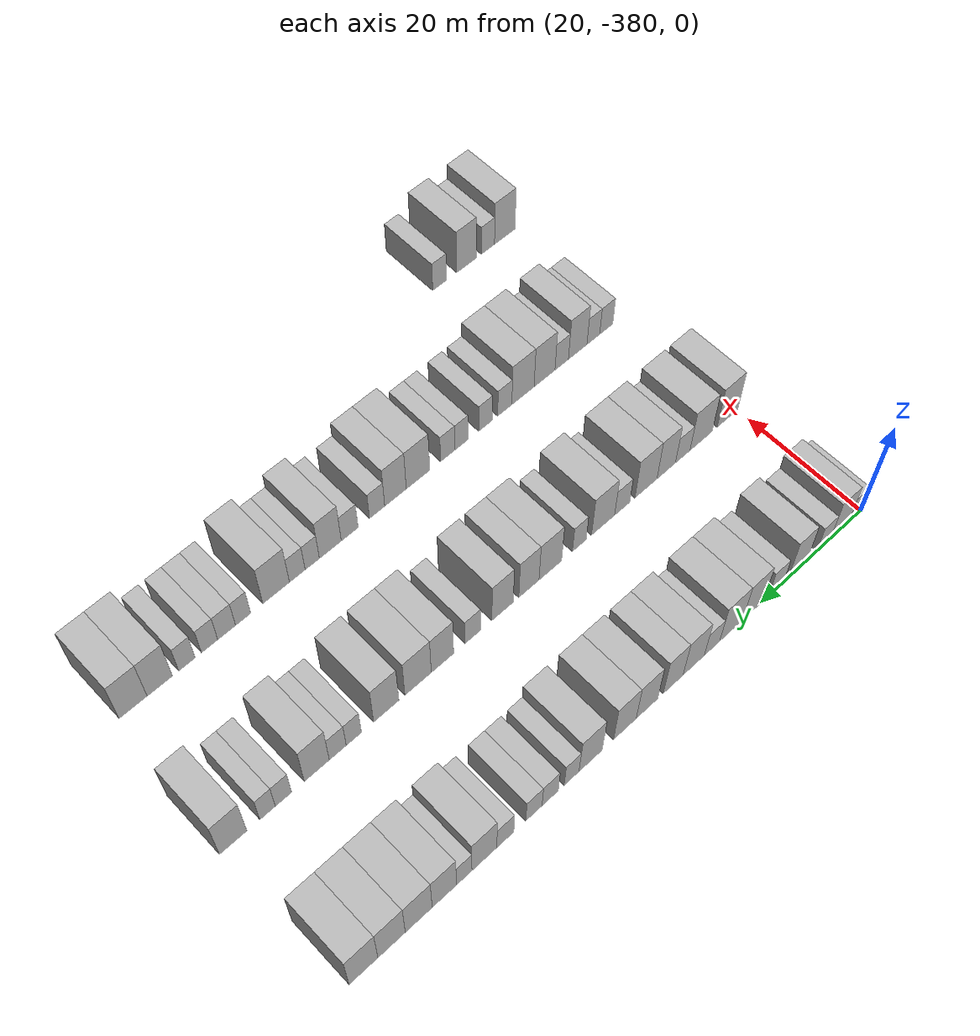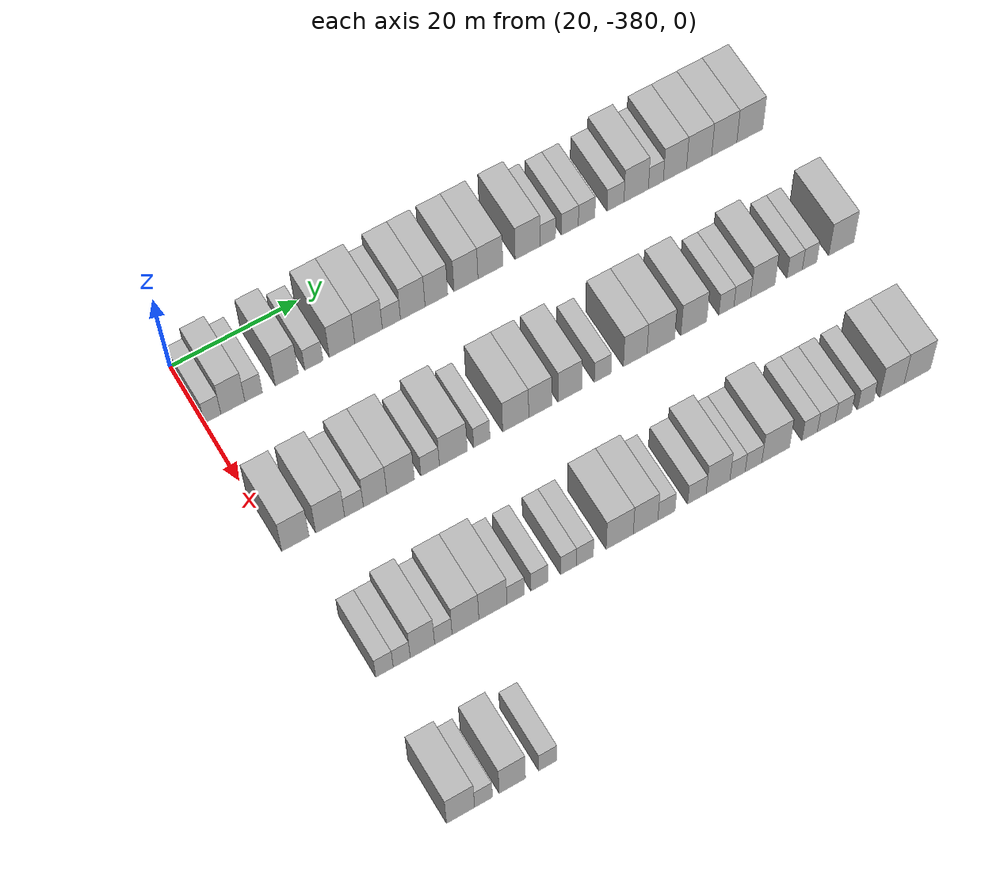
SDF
<sdf version="1.6">
 <world name="default">
  <model name="building_1">
   <static>1</static>
   <pose>25.0000 -378.7042 0 0.000000 0.000000 0.000000</pose>
   <link name="link">
    <pose>0 0 3.00 0 0 0</pose>
    <collision name="collision"><geometry><box><size>10.0000 2.5916 6.0000</size></box></geometry></collision>
    <visual name="visual">
     <cast_shadows>0</cast_shadows>
     <geometry><box><size>10.0000 2.5916 6.0000</size></box></geometry>
     <material>
      <script>
       <uri>model://HANNAS_wall/materials/scripts</uri>
       <uri>model://HANNAS_wall/materials/textures</uri>
       <name>vrc/HANNAS_wall</name>
      </script>
     </material>
    </visual>
   </link>
  </model>
  <model name="building_2">
   <static>1</static>
   <pose>25.0000 -375.5459 0 0.000000 0.000000 0.000000</pose>
   <link name="link">
    <pose>0 0 4.50 0 0 0</pose>
    <collision name="collision"><geometry><box><size>10.0000 3.7251 9.0000</size></box></geometry></collision>
    <visual name="visual">
     <cast_shadows>0</cast_shadows>
     <geometry><box><size>10.0000 3.7251 9.0000</size></box></geometry>
     <material>
      <script>
       <uri>model://HANNAS_wall/materials/scripts</uri>
       <uri>model://HANNAS_wall/materials/textures</uri>
       <name>vrc/HANNAS_wall</name>
      </script>
     </material>
    </visual>
   </link>
  </model>
  <model name="building_3">
   <static>1</static>
   <pose>25.0000 -372.3275 0 0.000000 0.000000 0.000000</pose>
   <link name="link">
    <pose>0 0 3.00 0 0 0</pose>
    <collision name="collision"><geometry><box><size>10.0000 2.7116 6.0000</size></box></geometry></collision>
    <visual name="visual">
     <cast_shadows>0</cast_shadows>
     <geometry><box><size>10.0000 2.7116 6.0000</size></box></geometry>
     <material>
      <script>
       <uri>model://HANNAS_wall/materials/scripts</uri>
       <uri>model://HANNAS_wall/materials/textures</uri>
       <name>vrc/HANNAS_wall</name>
      </script>
     </material>
    </visual>
   </link>
  </model>
  <model name="building_4">
   <static>1</static>
   <pose>25.0000 -367.1593 0 0.000000 0.000000 0.000000</pose>
   <link name="link">
    <pose>0 0 4.50 0 0 0</pose>
    <collision name="collision"><geometry><box><size>10.0000 3.6249 9.0000</size></box></geometry></collision>
    <visual name="visual">
     <cast_shadows>0</cast_shadows>
     <geometry><box><size>10.0000 3.6249 9.0000</size></box></geometry>
     <material>
      <script>
       <uri>model://HANNAS_wall/materials/scripts</uri>
       <uri>model://HANNAS_wall/materials/textures</uri>
       <name>vrc/HANNAS_wall</name>
      </script>
     </material>
    </visual>
   </link>
  </model>
  <model name="building_5">
   <static>1</static>
   <pose>25.0000 -362.9181 0 0.000000 0.000000 0.000000</pose>
   <link name="link">
    <pose>0 0 3.00 0 0 0</pose>
    <collision name="collision"><geometry><box><size>10.0000 2.8575 6.0000</size></box></geometry></collision>
    <visual name="visual">
     <cast_shadows>0</cast_shadows>
     <geometry><box><size>10.0000 2.8575 6.0000</size></box></geometry>
     <material>
      <script>
       <uri>model://HANNAS_wall/materials/scripts</uri>
       <uri>model://HANNAS_wall/materials/textures</uri>
       <name>vrc/HANNAS_wall</name>
      </script>
     </material>
    </visual>
   </link>
  </model>
  <model name="building_6">
   <static>1</static>
   <pose>25.0000 -358.4756 0 0.000000 0.000000 0.000000</pose>
   <link name="link">
    <pose>0 0 4.50 0 0 0</pose>
    <collision name="collision"><geometry><box><size>10.0000 4.0275 9.0000</size></box></geometry></collision>
    <visual name="visual">
     <cast_shadows>0</cast_shadows>
     <geometry><box><size>10.0000 4.0275 9.0000</size></box></geometry>
     <material>
      <script>
       <uri>model://HANNAS_wall/materials/scripts</uri>
       <uri>model://HANNAS_wall/materials/textures</uri>
       <name>vrc/HANNAS_wall</name>
      </script>
     </material>
    </visual>
   </link>
  </model>
  <model name="building_7">
   <static>1</static>
   <pose>25.0000 -354.2735 0 0.000000 0.000000 0.000000</pose>
   <link name="link">
    <pose>0 0 4.50 0 0 0</pose>
    <collision name="collision"><geometry><box><size>10.0000 4.3768 9.0000</size></box></geometry></collision>
    <visual name="visual">
     <cast_shadows>0</cast_shadows>
     <geometry><box><size>10.0000 4.3768 9.0000</size></box></geometry>
     <material>
      <script>
       <uri>model://HANNAS_wall/materials/scripts</uri>
       <uri>model://HANNAS_wall/materials/textures</uri>
       <name>vrc/HANNAS_wall</name>
      </script>
     </material>
    </visual>
   </link>
  </model>
  <model name="building_8">
   <static>1</static>
   <pose>25.0000 -350.6441 0 0.000000 0.000000 0.000000</pose>
   <link name="link">
    <pose>0 0 3.00 0 0 0</pose>
    <collision name="collision"><geometry><box><size>10.0000 2.8820 6.0000</size></box></geometry></collision>
    <visual name="visual">
     <cast_shadows>0</cast_shadows>
     <geometry><box><size>10.0000 2.8820 6.0000</size></box></geometry>
     <material>
      <script>
       <uri>model://HANNAS_wall/materials/scripts</uri>
       <uri>model://HANNAS_wall/materials/textures</uri>
       <name>vrc/HANNAS_wall</name>
      </script>
     </material>
    </visual>
   </link>
  </model>
  <model name="building_9">
   <static>1</static>
   <pose>25.0000 -347.2375 0 0.000000 0.000000 0.000000</pose>
   <link name="link">
    <pose>0 0 4.50 0 0 0</pose>
    <collision name="collision"><geometry><box><size>10.0000 3.9311 9.0000</size></box></geometry></collision>
    <visual name="visual">
     <cast_shadows>0</cast_shadows>
     <geometry><box><size>10.0000 3.9311 9.0000</size></box></geometry>
     <material>
      <script>
       <uri>model://HANNAS_wall/materials/scripts</uri>
       <uri>model://HANNAS_wall/materials/textures</uri>
       <name>vrc/HANNAS_wall</name>
      </script>
     </material>
    </visual>
   </link>
  </model>
  <model name="building_10">
   <static>1</static>
   <pose>25.0000 -343.4574 0 0.000000 0.000000 0.000000</pose>
   <link name="link">
    <pose>0 0 4.50 0 0 0</pose>
    <collision name="collision"><geometry><box><size>10.0000 3.6291 9.0000</size></box></geometry></collision>
    <visual name="visual">
     <cast_shadows>0</cast_shadows>
     <geometry><box><size>10.0000 3.6291 9.0000</size></box></geometry>
     <material>
      <script>
       <uri>model://HANNAS_wall/materials/scripts</uri>
       <uri>model://HANNAS_wall/materials/textures</uri>
       <name>vrc/HANNAS_wall</name>
      </script>
     </material>
    </visual>
   </link>
  </model>
  <model name="building_11">
   <static>1</static>
   <pose>25.0000 -338.7094 0 0.000000 0.000000 0.000000</pose>
   <link name="link">
    <pose>0 0 4.50 0 0 0</pose>
    <collision name="collision"><geometry><box><size>10.0000 3.8671 9.0000</size></box></geometry></collision>
    <visual name="visual">
     <cast_shadows>0</cast_shadows>
     <geometry><box><size>10.0000 3.8671 9.0000</size></box></geometry>
     <material>
      <script>
       <uri>model://HANNAS_wall/materials/scripts</uri>
       <uri>model://HANNAS_wall/materials/textures</uri>
       <name>vrc/HANNAS_wall</name>
      </script>
     </material>
    </visual>
   </link>
  </model>
  <model name="building_12">
   <static>1</static>
   <pose>25.0000 -334.7679 0 0.000000 0.000000 0.000000</pose>
   <link name="link">
    <pose>0 0 4.50 0 0 0</pose>
    <collision name="collision"><geometry><box><size>10.0000 4.0159 9.0000</size></box></geometry></collision>
    <visual name="visual">
     <cast_shadows>0</cast_shadows>
     <geometry><box><size>10.0000 4.0159 9.0000</size></box></geometry>
     <material>
      <script>
       <uri>model://HANNAS_wall/materials/scripts</uri>
       <uri>model://HANNAS_wall/materials/textures</uri>
       <name>vrc/HANNAS_wall</name>
      </script>
     </material>
    </visual>
   </link>
  </model>
  <model name="building_13">
   <static>1</static>
   <pose>25.0000 -328.7408 0 0.000000 0.000000 0.000000</pose>
   <link name="link">
    <pose>0 0 4.50 0 0 0</pose>
    <collision name="collision"><geometry><box><size>10.0000 4.0384 9.0000</size></box></geometry></collision>
    <visual name="visual">
     <cast_shadows>0</cast_shadows>
     <geometry><box><size>10.0000 4.0384 9.0000</size></box></geometry>
     <material>
      <script>
       <uri>model://HANNAS_wall/materials/scripts</uri>
       <uri>model://HANNAS_wall/materials/textures</uri>
       <name>vrc/HANNAS_wall</name>
      </script>
     </material>
    </visual>
   </link>
  </model>
  <model name="building_14">
   <static>1</static>
   <pose>25.0000 -325.4519 0 0.000000 0.000000 0.000000</pose>
   <link name="link">
    <pose>0 0 3.00 0 0 0</pose>
    <collision name="collision"><geometry><box><size>10.0000 2.5393 6.0000</size></box></geometry></collision>
    <visual name="visual">
     <cast_shadows>0</cast_shadows>
     <geometry><box><size>10.0000 2.5393 6.0000</size></box></geometry>
     <material>
      <script>
       <uri>model://HANNAS_wall/materials/scripts</uri>
       <uri>model://HANNAS_wall/materials/textures</uri>
       <name>vrc/HANNAS_wall</name>
      </script>
     </material>
    </visual>
   </link>
  </model>
  <model name="building_15">
   <static>1</static>
   <pose>25.0000 -321.8085 0 0.000000 0.000000 0.000000</pose>
   <link name="link">
    <pose>0 0 3.00 0 0 0</pose>
    <collision name="collision"><geometry><box><size>10.0000 2.7476 6.0000</size></box></geometry></collision>
    <visual name="visual">
     <cast_shadows>0</cast_shadows>
     <geometry><box><size>10.0000 2.7476 6.0000</size></box></geometry>
     <material>
      <script>
       <uri>model://HANNAS_wall/materials/scripts</uri>
       <uri>model://HANNAS_wall/materials/textures</uri>
       <name>vrc/HANNAS_wall</name>
      </script>
     </material>
    </visual>
   </link>
  </model>
  <model name="building_16">
   <static>1</static>
   <pose>25.0000 -319.0733 0 0.000000 0.000000 0.000000</pose>
   <link name="link">
    <pose>0 0 3.00 0 0 0</pose>
    <collision name="collision"><geometry><box><size>10.0000 2.7228 6.0000</size></box></geometry></collision>
    <visual name="visual">
     <cast_shadows>0</cast_shadows>
     <geometry><box><size>10.0000 2.7228 6.0000</size></box></geometry>
     <material>
      <script>
       <uri>model://HANNAS_wall/materials/scripts</uri>
       <uri>model://HANNAS_wall/materials/textures</uri>
       <name>vrc/HANNAS_wall</name>
      </script>
     </material>
    </visual>
   </link>
  </model>
  <model name="building_17">
   <static>1</static>
   <pose>25.0000 -314.3101 0 0.000000 0.000000 0.000000</pose>
   <link name="link">
    <pose>0 0 3.00 0 0 0</pose>
    <collision name="collision"><geometry><box><size>10.0000 2.8036 6.0000</size></box></geometry></collision>
    <visual name="visual">
     <cast_shadows>0</cast_shadows>
     <geometry><box><size>10.0000 2.8036 6.0000</size></box></geometry>
     <material>
      <script>
       <uri>model://HANNAS_wall/materials/scripts</uri>
       <uri>model://HANNAS_wall/materials/textures</uri>
       <name>vrc/HANNAS_wall</name>
      </script>
     </material>
    </visual>
   </link>
  </model>
  <model name="building_18">
   <static>1</static>
   <pose>25.0000 -310.8846 0 0.000000 0.000000 0.000000</pose>
   <link name="link">
    <pose>0 0 4.50 0 0 0</pose>
    <collision name="collision"><geometry><box><size>10.0000 4.0474 9.0000</size></box></geometry></collision>
    <visual name="visual">
     <cast_shadows>0</cast_shadows>
     <geometry><box><size>10.0000 4.0474 9.0000</size></box></geometry>
     <material>
      <script>
       <uri>model://HANNAS_wall/materials/scripts</uri>
       <uri>model://HANNAS_wall/materials/textures</uri>
       <name>vrc/HANNAS_wall</name>
      </script>
     </material>
    </visual>
   </link>
  </model>
  <model name="building_19">
   <static>1</static>
   <pose>25.0000 -307.6178 0 0.000000 0.000000 0.000000</pose>
   <link name="link">
    <pose>0 0 3.00 0 0 0</pose>
    <collision name="collision"><geometry><box><size>10.0000 2.4863 6.0000</size></box></geometry></collision>
    <visual name="visual">
     <cast_shadows>0</cast_shadows>
     <geometry><box><size>10.0000 2.4863 6.0000</size></box></geometry>
     <material>
      <script>
       <uri>model://HANNAS_wall/materials/scripts</uri>
       <uri>model://HANNAS_wall/materials/textures</uri>
       <name>vrc/HANNAS_wall</name>
      </script>
     </material>
    </visual>
   </link>
  </model>
  <model name="building_20">
   <static>1</static>
   <pose>25.0000 -304.4380 0 0.000000 0.000000 0.000000</pose>
   <link name="link">
    <pose>0 0 4.50 0 0 0</pose>
    <collision name="collision"><geometry><box><size>10.0000 3.8734 9.0000</size></box></geometry></collision>
    <visual name="visual">
     <cast_shadows>0</cast_shadows>
     <geometry><box><size>10.0000 3.8734 9.0000</size></box></geometry>
     <material>
      <script>
       <uri>model://HANNAS_wall/materials/scripts</uri>
       <uri>model://HANNAS_wall/materials/textures</uri>
       <name>vrc/HANNAS_wall</name>
      </script>
     </material>
    </visual>
   </link>
  </model>
  <model name="building_21">
   <static>1</static>
   <pose>25.0000 -300.3931 0 0.000000 0.000000 0.000000</pose>
   <link name="link">
    <pose>0 0 4.50 0 0 0</pose>
    <collision name="collision"><geometry><box><size>10.0000 4.2163 9.0000</size></box></geometry></collision>
    <visual name="visual">
     <cast_shadows>0</cast_shadows>
     <geometry><box><size>10.0000 4.2163 9.0000</size></box></geometry>
     <material>
      <script>
       <uri>model://HANNAS_wall/materials/scripts</uri>
       <uri>model://HANNAS_wall/materials/textures</uri>
       <name>vrc/HANNAS_wall</name>
      </script>
     </material>
    </visual>
   </link>
  </model>
  <model name="building_22">
   <static>1</static>
   <pose>25.0000 -296.1703 0 0.000000 0.000000 0.000000</pose>
   <link name="link">
    <pose>0 0 4.50 0 0 0</pose>
    <collision name="collision"><geometry><box><size>10.0000 4.2294 9.0000</size></box></geometry></collision>
    <visual name="visual">
     <cast_shadows>0</cast_shadows>
     <geometry><box><size>10.0000 4.2294 9.0000</size></box></geometry>
     <material>
      <script>
       <uri>model://HANNAS_wall/materials/scripts</uri>
       <uri>model://HANNAS_wall/materials/textures</uri>
       <name>vrc/HANNAS_wall</name>
      </script>
     </material>
    </visual>
   </link>
  </model>
  <model name="building_23">
   <static>1</static>
   <pose>25.0000 -291.8603 0 0.000000 0.000000 0.000000</pose>
   <link name="link">
    <pose>0 0 4.50 0 0 0</pose>
    <collision name="collision"><geometry><box><size>10.0000 4.3907 9.0000</size></box></geometry></collision>
    <visual name="visual">
     <cast_shadows>0</cast_shadows>
     <geometry><box><size>10.0000 4.3907 9.0000</size></box></geometry>
     <material>
      <script>
       <uri>model://HANNAS_wall/materials/scripts</uri>
       <uri>model://HANNAS_wall/materials/textures</uri>
       <name>vrc/HANNAS_wall</name>
      </script>
     </material>
    </visual>
   </link>
  </model>
  <model name="building_189">
   <static>1</static>
   <pose>47.0000 -377.9081 0 0.000000 0.000000 0.000000</pose>
   <link name="link">
    <pose>0 0 4.50 0 0 0</pose>
    <collision name="collision"><geometry><box><size>10.0000 4.1838 9.0000</size></box></geometry></collision>
    <visual name="visual">
     <cast_shadows>0</cast_shadows>
     <geometry><box><size>10.0000 4.1838 9.0000</size></box></geometry>
     <material>
      <script>
       <uri>model://HANNAS_wall/materials/scripts</uri>
       <uri>model://HANNAS_wall/materials/textures</uri>
       <name>vrc/HANNAS_wall</name>
      </script>
     </material>
    </visual>
   </link>
  </model>
  <model name="building_190">
   <static>1</static>
   <pose>47.0000 -372.5840 0 0.000000 0.000000 0.000000</pose>
   <link name="link">
    <pose>0 0 4.50 0 0 0</pose>
    <collision name="collision"><geometry><box><size>10.0000 4.4645 9.0000</size></box></geometry></collision>
    <visual name="visual">
     <cast_shadows>0</cast_shadows>
     <geometry><box><size>10.0000 4.4645 9.0000</size></box></geometry>
     <material>
      <script>
       <uri>model://HANNAS_wall/materials/scripts</uri>
       <uri>model://HANNAS_wall/materials/textures</uri>
       <name>vrc/HANNAS_wall</name>
      </script>
     </material>
    </visual>
   </link>
  </model>
  <model name="building_191">
   <static>1</static>
   <pose>47.0000 -368.9100 0 0.000000 0.000000 0.000000</pose>
   <link name="link">
    <pose>0 0 3.00 0 0 0</pose>
    <collision name="collision"><geometry><box><size>10.0000 2.8834 6.0000</size></box></geometry></collision>
    <visual name="visual">
     <cast_shadows>0</cast_shadows>
     <geometry><box><size>10.0000 2.8834 6.0000</size></box></geometry>
     <material>
      <script>
       <uri>model://HANNAS_wall/materials/scripts</uri>
       <uri>model://HANNAS_wall/materials/textures</uri>
       <name>vrc/HANNAS_wall</name>
      </script>
     </material>
    </visual>
   </link>
  </model>
  <model name="building_192">
   <static>1</static>
   <pose>47.0000 -365.6551 0 0.000000 0.000000 0.000000</pose>
   <link name="link">
    <pose>0 0 4.50 0 0 0</pose>
    <collision name="collision"><geometry><box><size>10.0000 3.6265 9.0000</size></box></geometry></collision>
    <visual name="visual">
     <cast_shadows>0</cast_shadows>
     <geometry><box><size>10.0000 3.6265 9.0000</size></box></geometry>
     <material>
      <script>
       <uri>model://HANNAS_wall/materials/scripts</uri>
       <uri>model://HANNAS_wall/materials/textures</uri>
       <name>vrc/HANNAS_wall</name>
      </script>
     </material>
    </visual>
   </link>
  </model>
  <model name="building_193">
   <static>1</static>
   <pose>47.0000 -361.7041 0 0.000000 0.000000 0.000000</pose>
   <link name="link">
    <pose>0 0 4.50 0 0 0</pose>
    <collision name="collision"><geometry><box><size>10.0000 4.2756 9.0000</size></box></geometry></collision>
    <visual name="visual">
     <cast_shadows>0</cast_shadows>
     <geometry><box><size>10.0000 4.2756 9.0000</size></box></geometry>
     <material>
      <script>
       <uri>model://HANNAS_wall/materials/scripts</uri>
       <uri>model://HANNAS_wall/materials/textures</uri>
       <name>vrc/HANNAS_wall</name>
      </script>
     </material>
    </visual>
   </link>
  </model>
  <model name="building_194">
   <static>1</static>
   <pose>47.0000 -357.1173 0 0.000000 0.000000 0.000000</pose>
   <link name="link">
    <pose>0 0 3.00 0 0 0</pose>
    <collision name="collision"><geometry><box><size>10.0000 2.8979 6.0000</size></box></geometry></collision>
    <visual name="visual">
     <cast_shadows>0</cast_shadows>
     <geometry><box><size>10.0000 2.8979 6.0000</size></box></geometry>
     <material>
      <script>
       <uri>model://HANNAS_wall/materials/scripts</uri>
       <uri>model://HANNAS_wall/materials/textures</uri>
       <name>vrc/HANNAS_wall</name>
      </script>
     </material>
    </visual>
   </link>
  </model>
  <model name="building_195">
   <static>1</static>
   <pose>47.0000 -353.4883 0 0.000000 0.000000 0.000000</pose>
   <link name="link">
    <pose>0 0 4.50 0 0 0</pose>
    <collision name="collision"><geometry><box><size>10.0000 4.3600 9.0000</size></box></geometry></collision>
    <visual name="visual">
     <cast_shadows>0</cast_shadows>
     <geometry><box><size>10.0000 4.3600 9.0000</size></box></geometry>
     <material>
      <script>
       <uri>model://HANNAS_wall/materials/scripts</uri>
       <uri>model://HANNAS_wall/materials/textures</uri>
       <name>vrc/HANNAS_wall</name>
      </script>
     </material>
    </visual>
   </link>
  </model>
  <model name="building_196">
   <static>1</static>
   <pose>47.0000 -349.0237 0 0.000000 0.000000 0.000000</pose>
   <link name="link">
    <pose>0 0 3.00 0 0 0</pose>
    <collision name="collision"><geometry><box><size>10.0000 2.5692 6.0000</size></box></geometry></collision>
    <visual name="visual">
     <cast_shadows>0</cast_shadows>
     <geometry><box><size>10.0000 2.5692 6.0000</size></box></geometry>
     <material>
      <script>
       <uri>model://HANNAS_wall/materials/scripts</uri>
       <uri>model://HANNAS_wall/materials/textures</uri>
       <name>vrc/HANNAS_wall</name>
      </script>
     </material>
    </visual>
   </link>
  </model>
  <model name="building_197">
   <static>1</static>
   <pose>47.0000 -343.6737 0 0.000000 0.000000 0.000000</pose>
   <link name="link">
    <pose>0 0 4.50 0 0 0</pose>
    <collision name="collision"><geometry><box><size>10.0000 4.1309 9.0000</size></box></geometry></collision>
    <visual name="visual">
     <cast_shadows>0</cast_shadows>
     <geometry><box><size>10.0000 4.1309 9.0000</size></box></geometry>
     <material>
      <script>
       <uri>model://HANNAS_wall/materials/scripts</uri>
       <uri>model://HANNAS_wall/materials/textures</uri>
       <name>vrc/HANNAS_wall</name>
      </script>
     </material>
    </visual>
   </link>
  </model>
  <model name="building_198">
   <static>1</static>
   <pose>47.0000 -339.7836 0 0.000000 0.000000 0.000000</pose>
   <link name="link">
    <pose>0 0 4.50 0 0 0</pose>
    <collision name="collision"><geometry><box><size>10.0000 3.6491 9.0000</size></box></geometry></collision>
    <visual name="visual">
     <cast_shadows>0</cast_shadows>
     <geometry><box><size>10.0000 3.6491 9.0000</size></box></geometry>
     <material>
      <script>
       <uri>model://HANNAS_wall/materials/scripts</uri>
       <uri>model://HANNAS_wall/materials/textures</uri>
       <name>vrc/HANNAS_wall</name>
      </script>
     </material>
    </visual>
   </link>
  </model>
  <model name="building_199">
   <static>1</static>
   <pose>47.0000 -335.0573 0 0.000000 0.000000 0.000000</pose>
   <link name="link">
    <pose>0 0 4.50 0 0 0</pose>
    <collision name="collision"><geometry><box><size>10.0000 3.8035 9.0000</size></box></geometry></collision>
    <visual name="visual">
     <cast_shadows>0</cast_shadows>
     <geometry><box><size>10.0000 3.8035 9.0000</size></box></geometry>
     <material>
      <script>
       <uri>model://HANNAS_wall/materials/scripts</uri>
       <uri>model://HANNAS_wall/materials/textures</uri>
       <name>vrc/HANNAS_wall</name>
      </script>
     </material>
    </visual>
   </link>
  </model>
  <model name="building_200">
   <static>1</static>
   <pose>47.0000 -329.8142 0 0.000000 0.000000 0.000000</pose>
   <link name="link">
    <pose>0 0 3.00 0 0 0</pose>
    <collision name="collision"><geometry><box><size>10.0000 2.6826 6.0000</size></box></geometry></collision>
    <visual name="visual">
     <cast_shadows>0</cast_shadows>
     <geometry><box><size>10.0000 2.6826 6.0000</size></box></geometry>
     <material>
      <script>
       <uri>model://HANNAS_wall/materials/scripts</uri>
       <uri>model://HANNAS_wall/materials/textures</uri>
       <name>vrc/HANNAS_wall</name>
      </script>
     </material>
    </visual>
   </link>
  </model>
  <model name="building_201">
   <static>1</static>
   <pose>47.0000 -324.5609 0 0.000000 0.000000 0.000000</pose>
   <link name="link">
    <pose>0 0 4.50 0 0 0</pose>
    <collision name="collision"><geometry><box><size>10.0000 3.8240 9.0000</size></box></geometry></collision>
    <visual name="visual">
     <cast_shadows>0</cast_shadows>
     <geometry><box><size>10.0000 3.8240 9.0000</size></box></geometry>
     <material>
      <script>
       <uri>model://HANNAS_wall/materials/scripts</uri>
       <uri>model://HANNAS_wall/materials/textures</uri>
       <name>vrc/HANNAS_wall</name>
      </script>
     </material>
    </visual>
   </link>
  </model>
  <model name="building_202">
   <static>1</static>
   <pose>47.0000 -320.4090 0 0.000000 0.000000 0.000000</pose>
   <link name="link">
    <pose>0 0 4.50 0 0 0</pose>
    <collision name="collision"><geometry><box><size>10.0000 4.4798 9.0000</size></box></geometry></collision>
    <visual name="visual">
     <cast_shadows>0</cast_shadows>
     <geometry><box><size>10.0000 4.4798 9.0000</size></box></geometry>
     <material>
      <script>
       <uri>model://HANNAS_wall/materials/scripts</uri>
       <uri>model://HANNAS_wall/materials/textures</uri>
       <name>vrc/HANNAS_wall</name>
      </script>
     </material>
    </visual>
   </link>
  </model>
  <model name="building_203">
   <static>1</static>
   <pose>47.0000 -315.0668 0 0.000000 0.000000 0.000000</pose>
   <link name="link">
    <pose>0 0 4.50 0 0 0</pose>
    <collision name="collision"><geometry><box><size>10.0000 4.2047 9.0000</size></box></geometry></collision>
    <visual name="visual">
     <cast_shadows>0</cast_shadows>
     <geometry><box><size>10.0000 4.2047 9.0000</size></box></geometry>
     <material>
      <script>
       <uri>model://HANNAS_wall/materials/scripts</uri>
       <uri>model://HANNAS_wall/materials/textures</uri>
       <name>vrc/HANNAS_wall</name>
      </script>
     </material>
    </visual>
   </link>
  </model>
  <model name="building_204">
   <static>1</static>
   <pose>47.0000 -309.7242 0 0.000000 0.000000 0.000000</pose>
   <link name="link">
    <pose>0 0 3.00 0 0 0</pose>
    <collision name="collision"><geometry><box><size>10.0000 2.4804 6.0000</size></box></geometry></collision>
    <visual name="visual">
     <cast_shadows>0</cast_shadows>
     <geometry><box><size>10.0000 2.4804 6.0000</size></box></geometry>
     <material>
      <script>
       <uri>model://HANNAS_wall/materials/scripts</uri>
       <uri>model://HANNAS_wall/materials/textures</uri>
       <name>vrc/HANNAS_wall</name>
      </script>
     </material>
    </visual>
   </link>
  </model>
  <model name="building_205">
   <static>1</static>
   <pose>47.0000 -307.1142 0 0.000000 0.000000 0.000000</pose>
   <link name="link">
    <pose>0 0 3.00 0 0 0</pose>
    <collision name="collision"><geometry><box><size>10.0000 2.7396 6.0000</size></box></geometry></collision>
    <visual name="visual">
     <cast_shadows>0</cast_shadows>
     <geometry><box><size>10.0000 2.7396 6.0000</size></box></geometry>
     <material>
      <script>
       <uri>model://HANNAS_wall/materials/scripts</uri>
       <uri>model://HANNAS_wall/materials/textures</uri>
       <name>vrc/HANNAS_wall</name>
      </script>
     </material>
    </visual>
   </link>
  </model>
  <model name="building_206">
   <static>1</static>
   <pose>47.0000 -303.7391 0 0.000000 0.000000 0.000000</pose>
   <link name="link">
    <pose>0 0 4.50 0 0 0</pose>
    <collision name="collision"><geometry><box><size>10.0000 4.0106 9.0000</size></box></geometry></collision>
    <visual name="visual">
     <cast_shadows>0</cast_shadows>
     <geometry><box><size>10.0000 4.0106 9.0000</size></box></geometry>
     <material>
      <script>
       <uri>model://HANNAS_wall/materials/scripts</uri>
       <uri>model://HANNAS_wall/materials/textures</uri>
       <name>vrc/HANNAS_wall</name>
      </script>
     </material>
    </visual>
   </link>
  </model>
  <model name="building_207">
   <static>1</static>
   <pose>47.0000 -298.4569 0 0.000000 0.000000 0.000000</pose>
   <link name="link">
    <pose>0 0 3.00 0 0 0</pose>
    <collision name="collision"><geometry><box><size>10.0000 2.5538 6.0000</size></box></geometry></collision>
    <visual name="visual">
     <cast_shadows>0</cast_shadows>
     <geometry><box><size>10.0000 2.5538 6.0000</size></box></geometry>
     <material>
      <script>
       <uri>model://HANNAS_wall/materials/scripts</uri>
       <uri>model://HANNAS_wall/materials/textures</uri>
       <name>vrc/HANNAS_wall</name>
      </script>
     </material>
    </visual>
   </link>
  </model>
  <model name="building_208">
   <static>1</static>
   <pose>47.0000 -295.9746 0 0.000000 0.000000 0.000000</pose>
   <link name="link">
    <pose>0 0 3.00 0 0 0</pose>
    <collision name="collision"><geometry><box><size>10.0000 2.4107 6.0000</size></box></geometry></collision>
    <visual name="visual">
     <cast_shadows>0</cast_shadows>
     <geometry><box><size>10.0000 2.4107 6.0000</size></box></geometry>
     <material>
      <script>
       <uri>model://HANNAS_wall/materials/scripts</uri>
       <uri>model://HANNAS_wall/materials/textures</uri>
       <name>vrc/HANNAS_wall</name>
      </script>
     </material>
    </visual>
   </link>
  </model>
  <model name="building_209">
   <static>1</static>
   <pose>47.0000 -290.6665 0 0.000000 0.000000 0.000000</pose>
   <link name="link">
    <pose>0 0 4.50 0 0 0</pose>
    <collision name="collision"><geometry><box><size>10.0000 4.2055 9.0000</size></box></geometry></collision>
    <visual name="visual">
     <cast_shadows>0</cast_shadows>
     <geometry><box><size>10.0000 4.2055 9.0000</size></box></geometry>
     <material>
      <script>
       <uri>model://HANNAS_wall/materials/scripts</uri>
       <uri>model://HANNAS_wall/materials/textures</uri>
       <name>vrc/HANNAS_wall</name>
      </script>
     </material>
    </visual>
   </link>
  </model>
  <model name="building_380">
   <static>1</static>
   <pose>69.0000 -376.6741 0 0.000000 0.000000 0.000000</pose>
   <link name="link">
    <pose>0 0 3.00 0 0 0</pose>
    <collision name="collision"><geometry><box><size>10.0000 2.6517 6.0000</size></box></geometry></collision>
    <visual name="visual">
     <cast_shadows>0</cast_shadows>
     <geometry><box><size>10.0000 2.6517 6.0000</size></box></geometry>
     <material>
      <script>
       <uri>model://HANNAS_wall/materials/scripts</uri>
       <uri>model://HANNAS_wall/materials/textures</uri>
       <name>vrc/HANNAS_wall</name>
      </script>
     </material>
    </visual>
   </link>
  </model>
  <model name="building_381">
   <static>1</static>
   <pose>69.0000 -374.0664 0 0.000000 0.000000 0.000000</pose>
   <link name="link">
    <pose>0 0 3.00 0 0 0</pose>
    <collision name="collision"><geometry><box><size>10.0000 2.5638 6.0000</size></box></geometry></collision>
    <visual name="visual">
     <cast_shadows>0</cast_shadows>
     <geometry><box><size>10.0000 2.5638 6.0000</size></box></geometry>
     <material>
      <script>
       <uri>model://HANNAS_wall/materials/scripts</uri>
       <uri>model://HANNAS_wall/materials/textures</uri>
       <name>vrc/HANNAS_wall</name>
      </script>
     </material>
    </visual>
   </link>
  </model>
  <model name="building_382">
   <static>1</static>
   <pose>69.0000 -370.9356 0 0.000000 0.000000 0.000000</pose>
   <link name="link">
    <pose>0 0 4.50 0 0 0</pose>
    <collision name="collision"><geometry><box><size>10.0000 3.6976 9.0000</size></box></geometry></collision>
    <visual name="visual">
     <cast_shadows>0</cast_shadows>
     <geometry><box><size>10.0000 3.6976 9.0000</size></box></geometry>
     <material>
      <script>
       <uri>model://HANNAS_wall/materials/scripts</uri>
       <uri>model://HANNAS_wall/materials/textures</uri>
       <name>vrc/HANNAS_wall</name>
      </script>
     </material>
    </visual>
   </link>
  </model>
  <model name="building_383">
   <static>1</static>
   <pose>69.0000 -367.7574 0 0.000000 0.000000 0.000000</pose>
   <link name="link">
    <pose>0 0 3.00 0 0 0</pose>
    <collision name="collision"><geometry><box><size>10.0000 2.6589 6.0000</size></box></geometry></collision>
    <visual name="visual">
     <cast_shadows>0</cast_shadows>
     <geometry><box><size>10.0000 2.6589 6.0000</size></box></geometry>
     <material>
      <script>
       <uri>model://HANNAS_wall/materials/scripts</uri>
       <uri>model://HANNAS_wall/materials/textures</uri>
       <name>vrc/HANNAS_wall</name>
      </script>
     </material>
    </visual>
   </link>
  </model>
  <model name="building_384">
   <static>1</static>
   <pose>69.0000 -364.3811 0 0.000000 0.000000 0.000000</pose>
   <link name="link">
    <pose>0 0 4.50 0 0 0</pose>
    <collision name="collision"><geometry><box><size>10.0000 4.0938 9.0000</size></box></geometry></collision>
    <visual name="visual">
     <cast_shadows>0</cast_shadows>
     <geometry><box><size>10.0000 4.0938 9.0000</size></box></geometry>
     <material>
      <script>
       <uri>model://HANNAS_wall/materials/scripts</uri>
       <uri>model://HANNAS_wall/materials/textures</uri>
       <name>vrc/HANNAS_wall</name>
      </script>
     </material>
    </visual>
   </link>
  </model>
  <model name="building_385">
   <static>1</static>
   <pose>69.0000 -360.1810 0 0.000000 0.000000 0.000000</pose>
   <link name="link">
    <pose>0 0 4.50 0 0 0</pose>
    <collision name="collision"><geometry><box><size>10.0000 4.3063 9.0000</size></box></geometry></collision>
    <visual name="visual">
     <cast_shadows>0</cast_shadows>
     <geometry><box><size>10.0000 4.3063 9.0000</size></box></geometry>
     <material>
      <script>
       <uri>model://HANNAS_wall/materials/scripts</uri>
       <uri>model://HANNAS_wall/materials/textures</uri>
       <name>vrc/HANNAS_wall</name>
      </script>
     </material>
    </visual>
   </link>
  </model>
  <model name="building_386">
   <static>1</static>
   <pose>69.0000 -356.6786 0 0.000000 0.000000 0.000000</pose>
   <link name="link">
    <pose>0 0 3.00 0 0 0</pose>
    <collision name="collision"><geometry><box><size>10.0000 2.6985 6.0000</size></box></geometry></collision>
    <visual name="visual">
     <cast_shadows>0</cast_shadows>
     <geometry><box><size>10.0000 2.6985 6.0000</size></box></geometry>
     <material>
      <script>
       <uri>model://HANNAS_wall/materials/scripts</uri>
       <uri>model://HANNAS_wall/materials/textures</uri>
       <name>vrc/HANNAS_wall</name>
      </script>
     </material>
    </visual>
   </link>
  </model>
  <model name="building_387">
   <static>1</static>
   <pose>69.0000 -353.0262 0 0.000000 0.000000 0.000000</pose>
   <link name="link">
    <pose>0 0 3.00 0 0 0</pose>
    <collision name="collision"><geometry><box><size>10.0000 2.6064 6.0000</size></box></geometry></collision>
    <visual name="visual">
     <cast_shadows>0</cast_shadows>
     <geometry><box><size>10.0000 2.6064 6.0000</size></box></geometry>
     <material>
      <script>
       <uri>model://HANNAS_wall/materials/scripts</uri>
       <uri>model://HANNAS_wall/materials/textures</uri>
       <name>vrc/HANNAS_wall</name>
      </script>
     </material>
    </visual>
   </link>
  </model>
  <model name="building_388">
   <static>1</static>
   <pose>69.0000 -348.4966 0 0.000000 0.000000 0.000000</pose>
   <link name="link">
    <pose>0 0 3.00 0 0 0</pose>
    <collision name="collision"><geometry><box><size>10.0000 2.4528 6.0000</size></box></geometry></collision>
    <visual name="visual">
     <cast_shadows>0</cast_shadows>
     <geometry><box><size>10.0000 2.4528 6.0000</size></box></geometry>
     <material>
      <script>
       <uri>model://HANNAS_wall/materials/scripts</uri>
       <uri>model://HANNAS_wall/materials/textures</uri>
       <name>vrc/HANNAS_wall</name>
      </script>
     </material>
    </visual>
   </link>
  </model>
  <model name="building_389">
   <static>1</static>
   <pose>69.0000 -345.9564 0 0.000000 0.000000 0.000000</pose>
   <link name="link">
    <pose>0 0 3.00 0 0 0</pose>
    <collision name="collision"><geometry><box><size>10.0000 2.6276 6.0000</size></box></geometry></collision>
    <visual name="visual">
     <cast_shadows>0</cast_shadows>
     <geometry><box><size>10.0000 2.6276 6.0000</size></box></geometry>
     <material>
      <script>
       <uri>model://HANNAS_wall/materials/scripts</uri>
       <uri>model://HANNAS_wall/materials/textures</uri>
       <name>vrc/HANNAS_wall</name>
      </script>
     </material>
    </visual>
   </link>
  </model>
  <model name="building_390">
   <static>1</static>
   <pose>69.0000 -340.5116 0 0.000000 0.000000 0.000000</pose>
   <link name="link">
    <pose>0 0 4.50 0 0 0</pose>
    <collision name="collision"><geometry><box><size>10.0000 4.2619 9.0000</size></box></geometry></collision>
    <visual name="visual">
     <cast_shadows>0</cast_shadows>
     <geometry><box><size>10.0000 4.2619 9.0000</size></box></geometry>
     <material>
      <script>
       <uri>model://HANNAS_wall/materials/scripts</uri>
       <uri>model://HANNAS_wall/materials/textures</uri>
       <name>vrc/HANNAS_wall</name>
      </script>
     </material>
    </visual>
   </link>
  </model>
  <model name="building_391">
   <static>1</static>
   <pose>69.0000 -336.4485 0 0.000000 0.000000 0.000000</pose>
   <link name="link">
    <pose>0 0 4.50 0 0 0</pose>
    <collision name="collision"><geometry><box><size>10.0000 3.8643 9.0000</size></box></geometry></collision>
    <visual name="visual">
     <cast_shadows>0</cast_shadows>
     <geometry><box><size>10.0000 3.8643 9.0000</size></box></geometry>
     <material>
      <script>
       <uri>model://HANNAS_wall/materials/scripts</uri>
       <uri>model://HANNAS_wall/materials/textures</uri>
       <name>vrc/HANNAS_wall</name>
      </script>
     </material>
    </visual>
   </link>
  </model>
  <model name="building_392">
   <static>1</static>
   <pose>69.0000 -333.1596 0 0.000000 0.000000 0.000000</pose>
   <link name="link">
    <pose>0 0 3.00 0 0 0</pose>
    <collision name="collision"><geometry><box><size>10.0000 2.7135 6.0000</size></box></geometry></collision>
    <visual name="visual">
     <cast_shadows>0</cast_shadows>
     <geometry><box><size>10.0000 2.7135 6.0000</size></box></geometry>
     <material>
      <script>
       <uri>model://HANNAS_wall/materials/scripts</uri>
       <uri>model://HANNAS_wall/materials/textures</uri>
       <name>vrc/HANNAS_wall</name>
      </script>
     </material>
    </visual>
   </link>
  </model>
  <model name="building_393">
   <static>1</static>
   <pose>69.0000 -328.3326 0 0.000000 0.000000 0.000000</pose>
   <link name="link">
    <pose>0 0 3.00 0 0 0</pose>
    <collision name="collision"><geometry><box><size>10.0000 2.9405 6.0000</size></box></geometry></collision>
    <visual name="visual">
     <cast_shadows>0</cast_shadows>
     <geometry><box><size>10.0000 2.9405 6.0000</size></box></geometry>
     <material>
      <script>
       <uri>model://HANNAS_wall/materials/scripts</uri>
       <uri>model://HANNAS_wall/materials/textures</uri>
       <name>vrc/HANNAS_wall</name>
      </script>
     </material>
    </visual>
   </link>
  </model>
  <model name="building_394">
   <static>1</static>
   <pose>69.0000 -324.9668 0 0.000000 0.000000 0.000000</pose>
   <link name="link">
    <pose>0 0 4.50 0 0 0</pose>
    <collision name="collision"><geometry><box><size>10.0000 3.7911 9.0000</size></box></geometry></collision>
    <visual name="visual">
     <cast_shadows>0</cast_shadows>
     <geometry><box><size>10.0000 3.7911 9.0000</size></box></geometry>
     <material>
      <script>
       <uri>model://HANNAS_wall/materials/scripts</uri>
       <uri>model://HANNAS_wall/materials/textures</uri>
       <name>vrc/HANNAS_wall</name>
      </script>
     </material>
    </visual>
   </link>
  </model>
  <model name="building_395">
   <static>1</static>
   <pose>69.0000 -321.8522 0 0.000000 0.000000 0.000000</pose>
   <link name="link">
    <pose>0 0 3.00 0 0 0</pose>
    <collision name="collision"><geometry><box><size>10.0000 2.4382 6.0000</size></box></geometry></collision>
    <visual name="visual">
     <cast_shadows>0</cast_shadows>
     <geometry><box><size>10.0000 2.4382 6.0000</size></box></geometry>
     <material>
      <script>
       <uri>model://HANNAS_wall/materials/scripts</uri>
       <uri>model://HANNAS_wall/materials/textures</uri>
       <name>vrc/HANNAS_wall</name>
      </script>
     </material>
    </visual>
   </link>
  </model>
  <model name="building_396">
   <static>1</static>
   <pose>69.0000 -319.2989 0 0.000000 0.000000 0.000000</pose>
   <link name="link">
    <pose>0 0 3.00 0 0 0</pose>
    <collision name="collision"><geometry><box><size>10.0000 2.6685 6.0000</size></box></geometry></collision>
    <visual name="visual">
     <cast_shadows>0</cast_shadows>
     <geometry><box><size>10.0000 2.6685 6.0000</size></box></geometry>
     <material>
      <script>
       <uri>model://HANNAS_wall/materials/scripts</uri>
       <uri>model://HANNAS_wall/materials/textures</uri>
       <name>vrc/HANNAS_wall</name>
      </script>
     </material>
    </visual>
   </link>
  </model>
  <model name="building_397">
   <static>1</static>
   <pose>69.0000 -315.7253 0 0.000000 0.000000 0.000000</pose>
   <link name="link">
    <pose>0 0 4.50 0 0 0</pose>
    <collision name="collision"><geometry><box><size>10.0000 4.4787 9.0000</size></box></geometry></collision>
    <visual name="visual">
     <cast_shadows>0</cast_shadows>
     <geometry><box><size>10.0000 4.4787 9.0000</size></box></geometry>
     <material>
      <script>
       <uri>model://HANNAS_wall/materials/scripts</uri>
       <uri>model://HANNAS_wall/materials/textures</uri>
       <name>vrc/HANNAS_wall</name>
      </script>
     </material>
    </visual>
   </link>
  </model>
  <model name="building_398">
   <static>1</static>
   <pose>69.0000 -310.2356 0 0.000000 0.000000 0.000000</pose>
   <link name="link">
    <pose>0 0 3.00 0 0 0</pose>
    <collision name="collision"><geometry><box><size>10.0000 2.5006 6.0000</size></box></geometry></collision>
    <visual name="visual">
     <cast_shadows>0</cast_shadows>
     <geometry><box><size>10.0000 2.5006 6.0000</size></box></geometry>
     <material>
      <script>
       <uri>model://HANNAS_wall/materials/scripts</uri>
       <uri>model://HANNAS_wall/materials/textures</uri>
       <name>vrc/HANNAS_wall</name>
      </script>
     </material>
    </visual>
   </link>
  </model>
  <model name="building_399">
   <static>1</static>
   <pose>69.0000 -307.5289 0 0.000000 0.000000 0.000000</pose>
   <link name="link">
    <pose>0 0 3.00 0 0 0</pose>
    <collision name="collision"><geometry><box><size>10.0000 2.9128 6.0000</size></box></geometry></collision>
    <visual name="visual">
     <cast_shadows>0</cast_shadows>
     <geometry><box><size>10.0000 2.9128 6.0000</size></box></geometry>
     <material>
      <script>
       <uri>model://HANNAS_wall/materials/scripts</uri>
       <uri>model://HANNAS_wall/materials/textures</uri>
       <name>vrc/HANNAS_wall</name>
      </script>
     </material>
    </visual>
   </link>
  </model>
  <model name="building_400">
   <static>1</static>
   <pose>69.0000 -304.7548 0 0.000000 0.000000 0.000000</pose>
   <link name="link">
    <pose>0 0 3.00 0 0 0</pose>
    <collision name="collision"><geometry><box><size>10.0000 2.6355 6.0000</size></box></geometry></collision>
    <visual name="visual">
     <cast_shadows>0</cast_shadows>
     <geometry><box><size>10.0000 2.6355 6.0000</size></box></geometry>
     <material>
      <script>
       <uri>model://HANNAS_wall/materials/scripts</uri>
       <uri>model://HANNAS_wall/materials/textures</uri>
       <name>vrc/HANNAS_wall</name>
      </script>
     </material>
    </visual>
   </link>
  </model>
  <model name="building_401">
   <static>1</static>
   <pose>69.0000 -301.1172 0 0.000000 0.000000 0.000000</pose>
   <link name="link">
    <pose>0 0 3.00 0 0 0</pose>
    <collision name="collision"><geometry><box><size>10.0000 2.6398 6.0000</size></box></geometry></collision>
    <visual name="visual">
     <cast_shadows>0</cast_shadows>
     <geometry><box><size>10.0000 2.6398 6.0000</size></box></geometry>
     <material>
      <script>
       <uri>model://HANNAS_wall/materials/scripts</uri>
       <uri>model://HANNAS_wall/materials/textures</uri>
       <name>vrc/HANNAS_wall</name>
      </script>
     </material>
    </visual>
   </link>
  </model>
  <model name="building_402">
   <static>1</static>
   <pose>69.0000 -296.8001 0 0.000000 0.000000 0.000000</pose>
   <link name="link">
    <pose>0 0 4.50 0 0 0</pose>
    <collision name="collision"><geometry><box><size>10.0000 3.9944 9.0000</size></box></geometry></collision>
    <visual name="visual">
     <cast_shadows>0</cast_shadows>
     <geometry><box><size>10.0000 3.9944 9.0000</size></box></geometry>
     <material>
      <script>
       <uri>model://HANNAS_wall/materials/scripts</uri>
       <uri>model://HANNAS_wall/materials/textures</uri>
       <name>vrc/HANNAS_wall</name>
      </script>
     </material>
    </visual>
   </link>
  </model>
  <model name="building_403">
   <static>1</static>
   <pose>69.0000 -292.6310 0 0.000000 0.000000 0.000000</pose>
   <link name="link">
    <pose>0 0 4.50 0 0 0</pose>
    <collision name="collision"><geometry><box><size>10.0000 4.3438 9.0000</size></box></geometry></collision>
    <visual name="visual">
     <cast_shadows>0</cast_shadows>
     <geometry><box><size>10.0000 4.3438 9.0000</size></box></geometry>
     <material>
      <script>
       <uri>model://HANNAS_wall/materials/scripts</uri>
       <uri>model://HANNAS_wall/materials/textures</uri>
       <name>vrc/HANNAS_wall</name>
      </script>
     </material>
    </visual>
   </link>
  </model>
  <model name="building_566">
   <static>1</static>
   <pose>91.0000 -377.9114 0 0.000000 0.000000 0.000000</pose>
   <link name="link">
    <pose>0 0 4.50 0 0 0</pose>
    <collision name="collision"><geometry><box><size>10.0000 4.1773 9.0000</size></box></geometry></collision>
    <visual name="visual">
     <cast_shadows>0</cast_shadows>
     <geometry><box><size>10.0000 4.1773 9.0000</size></box></geometry>
     <material>
      <script>
       <uri>model://HANNAS_wall/materials/scripts</uri>
       <uri>model://HANNAS_wall/materials/textures</uri>
       <name>vrc/HANNAS_wall</name>
      </script>
     </material>
    </visual>
   </link>
  </model>
  <model name="building_567">
   <static>1</static>
   <pose>91.0000 -374.4914 0 0.000000 0.000000 0.000000</pose>
   <link name="link">
    <pose>0 0 3.00 0 0 0</pose>
    <collision name="collision"><geometry><box><size>10.0000 2.6626 6.0000</size></box></geometry></collision>
    <visual name="visual">
     <cast_shadows>0</cast_shadows>
     <geometry><box><size>10.0000 2.6626 6.0000</size></box></geometry>
     <material>
      <script>
       <uri>model://HANNAS_wall/materials/scripts</uri>
       <uri>model://HANNAS_wall/materials/textures</uri>
       <name>vrc/HANNAS_wall</name>
      </script>
     </material>
    </visual>
   </link>
  </model>
  <model name="building_568">
   <static>1</static>
   <pose>91.0000 -370.1942 0 0.000000 0.000000 0.000000</pose>
   <link name="link">
    <pose>0 0 4.50 0 0 0</pose>
    <collision name="collision"><geometry><box><size>10.0000 3.9318 9.0000</size></box></geometry></collision>
    <visual name="visual">
     <cast_shadows>0</cast_shadows>
     <geometry><box><size>10.0000 3.9318 9.0000</size></box></geometry>
     <material>
      <script>
       <uri>model://HANNAS_wall/materials/scripts</uri>
       <uri>model://HANNAS_wall/materials/textures</uri>
       <name>vrc/HANNAS_wall</name>
      </script>
     </material>
    </visual>
   </link>
  </model>
  <model name="building_569">
   <static>1</static>
   <pose>91.0000 -364.8611 0 0.000000 0.000000 0.000000</pose>
   <link name="link">
    <pose>0 0 3.00 0 0 0</pose>
    <collision name="collision"><geometry><box><size>10.0000 2.7345 6.0000</size></box></geometry></collision>
    <visual name="visual">
     <cast_shadows>0</cast_shadows>
     <geometry><box><size>10.0000 2.7345 6.0000</size></box></geometry>
     <material>
      <script>
       <uri>model://HANNAS_wall/materials/scripts</uri>
       <uri>model://HANNAS_wall/materials/textures</uri>
       <name>vrc/HANNAS_wall</name>
      </script>
     </material>
    </visual>
   </link>
  </model>
 </world>
</sdf>
